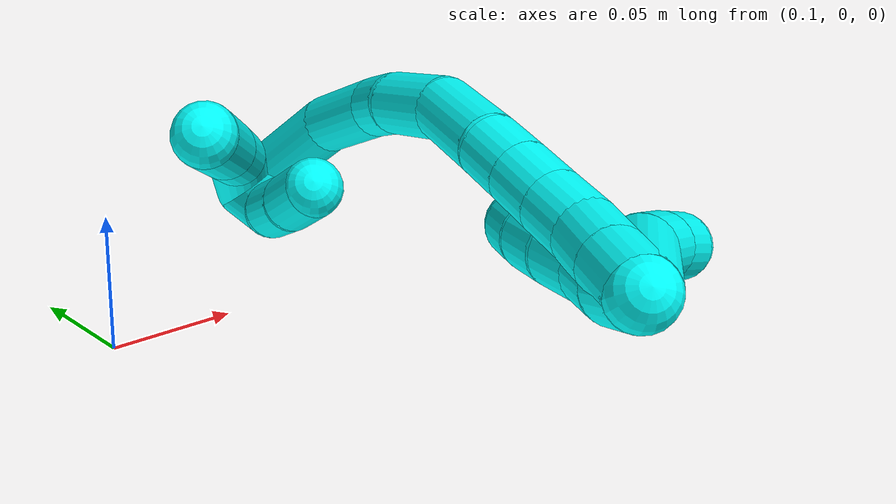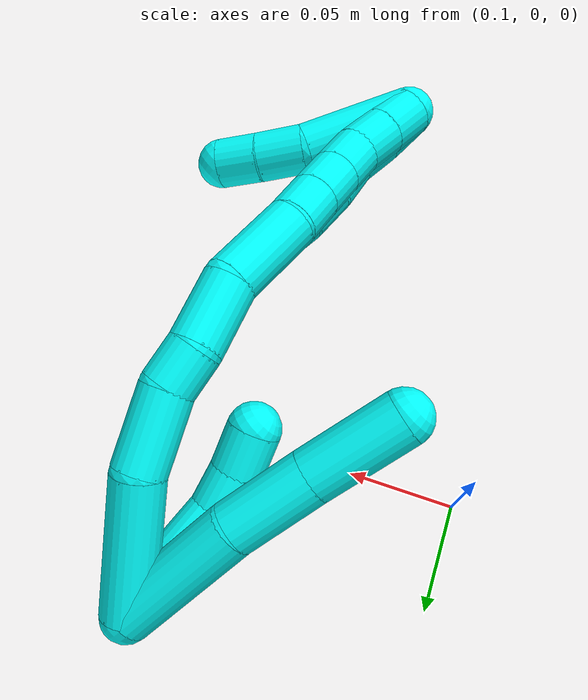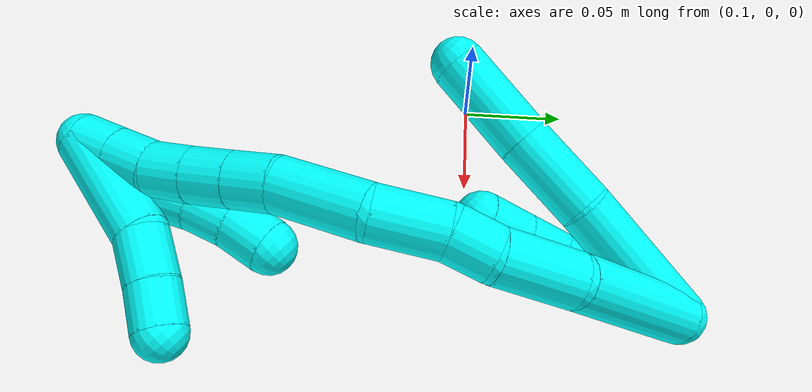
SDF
<sdf version="1.7">
 <world name="default">
  <model name="3">
   <static>0</static>
   <link name="3">
    <collision name="collision-cylinder-e_1_2_8">
     <pose>0.000406 -0.000252 0.032344 0.007801 0.012551 4.9e-05</pose>
     <geometry><cylinder><radius>0.0125</radius><length>0.064695</length></cylinder></geometry>
     <surface>
      <friction><ode><mu>1.16</mu><mu2>1.16</mu2><slip1>0</slip1><slip2>0</slip2></ode></friction>
      <contact><ode><kp>1e+06</kp><kd>1</kd><max_vel>0</max_vel><min_depth>0.001</min_depth></ode></contact>
     </surface>
    </collision>
    <visual name="visual-cylinder-e_1_2_8">
     <pose>0.000406 -0.000252 0.032344 0.007801 0.012551 4.9e-05</pose>
     <geometry><cylinder><radius>0.0125</radius><length>0.064695</length></cylinder></geometry>
     <material><ambient>0.003922 1 0.996078 1</ambient></material>
    </visual>
    <collision name="collision-cylinder-e_2_8_9">
     <pose>0.003702 0.001528 0.084291 -0.1033 0.145623 -0.007541</pose>
     <geometry><cylinder><radius>0.0125</radius><length>0.039839</length></cylinder></geometry>
     <surface>
      <friction><ode><mu>1.16</mu><mu2>1.16</mu2><slip1>0</slip1><slip2>0</slip2></ode></friction>
      <contact><ode><kp>1e+06</kp><kd>1</kd><max_vel>0</max_vel><min_depth>0.001</min_depth></ode></contact>
     </surface>
    </collision>
    <visual name="visual-cylinder-e_2_8_9">
     <pose>0.003702 0.001528 0.084291 -0.1033 0.145623 -0.007541</pose>
     <geometry><cylinder><radius>0.0125</radius><length>0.039839</length></cylinder></geometry>
     <material><ambient>0.003922 1 0.996078 1</ambient></material>
    </visual>
    <collision name="collision-cylinder-e_3_9_6">
     <pose>0.010347 0.005227 0.126254 -0.074425 0.165891 -0.00619</pose>
     <geometry><cylinder><radius>0.0125</radius><length>0.045466</length></cylinder></geometry>
     <surface>
      <friction><ode><mu>1.16</mu><mu2>1.16</mu2><slip1>0</slip1><slip2>0</slip2></ode></friction>
      <contact><ode><kp>1e+06</kp><kd>1</kd><max_vel>0</max_vel><min_depth>0.001</min_depth></ode></contact>
     </surface>
    </collision>
    <visual name="visual-cylinder-e_3_9_6">
     <pose>0.010347 0.005227 0.126254 -0.074425 0.165891 -0.00619</pose>
     <geometry><cylinder><radius>0.0125</radius><length>0.045466</length></cylinder></geometry>
     <material><ambient>0.003922 1 0.996078 1</ambient></material>
    </visual>
    <collision name="collision-cylinder-e_1_2_10">
     <pose>-0.001434 0.012376 0.026174 -0.441683 -0.049504 0.011116</pose>
     <geometry><cylinder><radius>0.0125</radius><length>0.057976</length></cylinder></geometry>
     <surface>
      <friction><ode><mu>1.16</mu><mu2>1.16</mu2><slip1>0</slip1><slip2>0</slip2></ode></friction>
      <contact><ode><kp>1e+06</kp><kd>1</kd><max_vel>0</max_vel><min_depth>0.001</min_depth></ode></contact>
     </surface>
    </collision>
    <visual name="visual-cylinder-e_1_2_10">
     <pose>-0.001434 0.012376 0.026174 -0.441683 -0.049504 0.011116</pose>
     <geometry><cylinder><radius>0.0125</radius><length>0.057976</length></cylinder></geometry>
     <material><ambient>0.003922 1 0.996078 1</ambient></material>
    </visual>
    <collision name="collision-cylinder-e_2_10_11">
     <pose>-0.006018 0.026959 0.061952 -0.225902 -0.309327 0.035367</pose>
     <geometry><cylinder><radius>0.0125</radius><length>0.020692</length></cylinder></geometry>
     <surface>
      <friction><ode><mu>1.16</mu><mu2>1.16</mu2><slip1>0</slip1><slip2>0</slip2></ode></friction>
      <contact><ode><kp>1e+06</kp><kd>1</kd><max_vel>0</max_vel><min_depth>0.001</min_depth></ode></contact>
     </surface>
    </collision>
    <visual name="visual-cylinder-e_2_10_11">
     <pose>-0.006018 0.026959 0.061952 -0.225902 -0.309327 0.035367</pose>
     <geometry><cylinder><radius>0.0125</radius><length>0.020692</length></cylinder></geometry>
     <material><ambient>0.003922 1 0.996078 1</ambient></material>
    </visual>
    <collision name="collision-cylinder-e_3_11_5">
     <pose>-0.013522 0.030582 0.08119 -0.145886 -0.420556 0.03119</pose>
     <geometry><cylinder><radius>0.0125</radius><length>0.021332</length></cylinder></geometry>
     <surface>
      <friction><ode><mu>1.16</mu><mu2>1.16</mu2><slip1>0</slip1><slip2>0</slip2></ode></friction>
      <contact><ode><kp>1e+06</kp><kd>1</kd><max_vel>0</max_vel><min_depth>0.001</min_depth></ode></contact>
     </surface>
    </collision>
    <visual name="visual-cylinder-e_3_11_5">
     <pose>-0.013522 0.030582 0.08119 -0.145886 -0.420556 0.03119</pose>
     <geometry><cylinder><radius>0.0125</radius><length>0.021332</length></cylinder></geometry>
     <material><ambient>0.003922 1 0.996078 1</ambient></material>
    </visual>
    <collision name="collision-cylinder-e_1_2_12">
     <pose>-0.021287 0.001318 0.025882 -0.050871 -0.687658 0.018218</pose>
     <geometry><cylinder><radius>0.0125</radius><length>0.067074</length></cylinder></geometry>
     <surface>
      <friction><ode><mu>1.16</mu><mu2>1.16</mu2><slip1>0</slip1><slip2>0</slip2></ode></friction>
      <contact><ode><kp>1e+06</kp><kd>1</kd><max_vel>0</max_vel><min_depth>0.001</min_depth></ode></contact>
     </surface>
    </collision>
    <visual name="visual-cylinder-e_1_2_12">
     <pose>-0.021287 0.001318 0.025882 -0.050871 -0.687658 0.018218</pose>
     <geometry><cylinder><radius>0.0125</radius><length>0.067074</length></cylinder></geometry>
     <material><ambient>0.003922 1 0.996078 1</ambient></material>
    </visual>
    <collision name="collision-cylinder-e_2_12_13">
     <pose>-0.050915 0.007894 0.067609 -0.320442 -0.463322 0.076208</pose>
     <geometry><cylinder><radius>0.0125</radius><length>0.037325</length></cylinder></geometry>
     <surface>
      <friction><ode><mu>1.16</mu><mu2>1.16</mu2><slip1>0</slip1><slip2>0</slip2></ode></friction>
      <contact><ode><kp>1e+06</kp><kd>1</kd><max_vel>0</max_vel><min_depth>0.001</min_depth></ode></contact>
     </surface>
    </collision>
    <visual name="visual-cylinder-e_2_12_13">
     <pose>-0.050915 0.007894 0.067609 -0.320442 -0.463322 0.076208</pose>
     <geometry><cylinder><radius>0.0125</radius><length>0.037325</length></cylinder></geometry>
     <material><ambient>0.003922 1 0.996078 1</ambient></material>
    </visual>
    <collision name="collision-cylinder-e_3_13_14">
     <pose>-0.061104 0.016442 0.092961 -0.333085 -0.181708 0.030627</pose>
     <geometry><cylinder><radius>0.0125</radius><length>0.020456</length></cylinder></geometry>
     <surface>
      <friction><ode><mu>1.16</mu><mu2>1.16</mu2><slip1>0</slip1><slip2>0</slip2></ode></friction>
      <contact><ode><kp>1e+06</kp><kd>1</kd><max_vel>0</max_vel><min_depth>0.001</min_depth></ode></contact>
     </surface>
    </collision>
    <visual name="visual-cylinder-e_3_13_14">
     <pose>-0.061104 0.016442 0.092961 -0.333085 -0.181708 0.030627</pose>
     <geometry><cylinder><radius>0.0125</radius><length>0.020456</length></cylinder></geometry>
     <material><ambient>0.003922 1 0.996078 1</ambient></material>
    </visual>
    <collision name="collision-cylinder-e_4_14_15">
     <pose>-0.067473 0.027905 0.115754 -0.551505 -0.282057 0.080301</pose>
     <geometry><cylinder><radius>0.0125</radius><length>0.032483</length></cylinder></geometry>
     <surface>
      <friction><ode><mu>1.16</mu><mu2>1.16</mu2><slip1>0</slip1><slip2>0</slip2></ode></friction>
      <contact><ode><kp>1e+06</kp><kd>1</kd><max_vel>0</max_vel><min_depth>0.001</min_depth></ode></contact>
     </surface>
    </collision>
    <visual name="visual-cylinder-e_4_14_15">
     <pose>-0.067473 0.027905 0.115754 -0.551505 -0.282057 0.080301</pose>
     <geometry><cylinder><radius>0.0125</radius><length>0.032483</length></cylinder></geometry>
     <material><ambient>0.003922 1 0.996078 1</ambient></material>
    </visual>
    <collision name="collision-cylinder-e_5_15_16">
     <pose>-0.071437 0.049094 0.145352 -0.673503 0.026659 -0.009334</pose>
     <geometry><cylinder><radius>0.0125</radius><length>0.04175</length></cylinder></geometry>
     <surface>
      <friction><ode><mu>1.16</mu><mu2>1.16</mu2><slip1>0</slip1><slip2>0</slip2></ode></friction>
      <contact><ode><kp>1e+06</kp><kd>1</kd><max_vel>0</max_vel><min_depth>0.001</min_depth></ode></contact>
     </surface>
    </collision>
    <visual name="visual-cylinder-e_5_15_16">
     <pose>-0.071437 0.049094 0.145352 -0.673503 0.026659 -0.009334</pose>
     <geometry><cylinder><radius>0.0125</radius><length>0.04175</length></cylinder></geometry>
     <material><ambient>0.003922 1 0.996078 1</ambient></material>
    </visual>
    <collision name="collision-cylinder-e_6_16_17">
     <pose>-0.071164 0.069712 0.168448 -0.842064 -0.027862 0.012478</pose>
     <geometry><cylinder><radius>0.0125</radius><length>0.020388</length></cylinder></geometry>
     <surface>
      <friction><ode><mu>1.16</mu><mu2>1.16</mu2><slip1>0</slip1><slip2>0</slip2></ode></friction>
      <contact><ode><kp>1e+06</kp><kd>1</kd><max_vel>0</max_vel><min_depth>0.001</min_depth></ode></contact>
     </surface>
    </collision>
    <visual name="visual-cylinder-e_6_16_17">
     <pose>-0.071164 0.069712 0.168448 -0.842064 -0.027862 0.012478</pose>
     <geometry><cylinder><radius>0.0125</radius><length>0.020388</length></cylinder></geometry>
     <material><ambient>0.003922 1 0.996078 1</ambient></material>
    </visual>
    <collision name="collision-cylinder-e_7_17_18">
     <pose>-0.071626 0.084889 0.181971 -0.843878 -0.017581 0.007892</pose>
     <geometry><cylinder><radius>0.0125</radius><length>0.020278</length></cylinder></geometry>
     <surface>
      <friction><ode><mu>1.16</mu><mu2>1.16</mu2><slip1>0</slip1><slip2>0</slip2></ode></friction>
      <contact><ode><kp>1e+06</kp><kd>1</kd><max_vel>0</max_vel><min_depth>0.001</min_depth></ode></contact>
     </surface>
    </collision>
    <visual name="visual-cylinder-e_7_17_18">
     <pose>-0.071626 0.084889 0.181971 -0.843878 -0.017581 0.007892</pose>
     <geometry><cylinder><radius>0.0125</radius><length>0.020278</length></cylinder></geometry>
     <material><ambient>0.003922 1 0.996078 1</ambient></material>
    </visual>
    <collision name="collision-cylinder-e_8_18_19">
     <pose>-0.071952 0.099757 0.195582 -0.815026 -0.014677 0.006336</pose>
     <geometry><cylinder><radius>0.0125</radius><length>0.020048</length></cylinder></geometry>
     <surface>
      <friction><ode><mu>1.16</mu><mu2>1.16</mu2><slip1>0</slip1><slip2>0</slip2></ode></friction>
      <contact><ode><kp>1e+06</kp><kd>1</kd><max_vel>0</max_vel><min_depth>0.001</min_depth></ode></contact>
     </surface>
    </collision>
    <visual name="visual-cylinder-e_8_18_19">
     <pose>-0.071952 0.099757 0.195582 -0.815026 -0.014677 0.006336</pose>
     <geometry><cylinder><radius>0.0125</radius><length>0.020048</length></cylinder></geometry>
     <material><ambient>0.003922 1 0.996078 1</ambient></material>
    </visual>
    <collision name="collision-cylinder-e_9_19_20">
     <pose>-0.070852 0.113134 0.210345 -0.656831 0.124562 -0.042494</pose>
     <geometry><cylinder><radius>0.0125</radius><length>0.020077</length></cylinder></geometry>
     <surface>
      <friction><ode><mu>1.16</mu><mu2>1.16</mu2><slip1>0</slip1><slip2>0</slip2></ode></friction>
      <contact><ode><kp>1e+06</kp><kd>1</kd><max_vel>0</max_vel><min_depth>0.001</min_depth></ode></contact>
     </surface>
    </collision>
    <visual name="visual-cylinder-e_9_19_20">
     <pose>-0.070852 0.113134 0.210345 -0.656831 0.124562 -0.042494</pose>
     <geometry><cylinder><radius>0.0125</radius><length>0.020077</length></cylinder></geometry>
     <material><ambient>0.003922 1 0.996078 1</ambient></material>
    </visual>
    <collision name="collision-cylinder-e_10_20_1">
     <pose>-0.068435 0.125227 0.226216 -0.645392 0.116468 -0.038984</pose>
     <geometry><cylinder><radius>0.0125</radius><length>0.020121</length></cylinder></geometry>
     <surface>
      <friction><ode><mu>1.16</mu><mu2>1.16</mu2><slip1>0</slip1><slip2>0</slip2></ode></friction>
      <contact><ode><kp>1e+06</kp><kd>1</kd><max_vel>0</max_vel><min_depth>0.001</min_depth></ode></contact>
     </surface>
    </collision>
    <visual name="visual-cylinder-e_10_20_1">
     <pose>-0.068435 0.125227 0.226216 -0.645392 0.116468 -0.038984</pose>
     <geometry><cylinder><radius>0.0125</radius><length>0.020121</length></cylinder></geometry>
     <material><ambient>0.003922 1 0.996078 1</ambient></material>
    </visual>
    <collision name="collision-cylinder-e_1_1_21">
     <pose>-0.067425 0.128914 0.224473 2.90715 -0.015855 -0.134432</pose>
     <geometry><cylinder><radius>0.0125</radius><length>0.02</length></cylinder></geometry>
     <surface>
      <friction><ode><mu>1.16</mu><mu2>1.16</mu2><slip1>0</slip1><slip2>0</slip2></ode></friction>
      <contact><ode><kp>1e+06</kp><kd>1</kd><max_vel>0</max_vel><min_depth>0.001</min_depth></ode></contact>
     </surface>
    </collision>
    <visual name="visual-cylinder-e_1_1_21">
     <pose>-0.067425 0.128914 0.224473 2.90715 -0.015855 -0.134432</pose>
     <geometry><cylinder><radius>0.0125</radius><length>0.02</length></cylinder></geometry>
     <material><ambient>0.003922 1 0.996078 1</ambient></material>
    </visual>
    <collision name="collision-cylinder-e_2_21_22">
     <pose>-0.068721 0.122379 0.20575 2.70368 -0.114016 -0.502105</pose>
     <geometry><cylinder><radius>0.0125</radius><length>0.02</length></cylinder></geometry>
     <surface>
      <friction><ode><mu>1.16</mu><mu2>1.16</mu2><slip1>0</slip1><slip2>0</slip2></ode></friction>
      <contact><ode><kp>1e+06</kp><kd>1</kd><max_vel>0</max_vel><min_depth>0.001</min_depth></ode></contact>
     </surface>
    </collision>
    <visual name="visual-cylinder-e_2_21_22">
     <pose>-0.068721 0.122379 0.20575 2.70368 -0.114016 -0.502105</pose>
     <geometry><cylinder><radius>0.0125</radius><length>0.02</length></cylinder></geometry>
     <material><ambient>0.003922 1 0.996078 1</ambient></material>
    </visual>
    <collision name="collision-cylinder-e_3_22_23">
     <pose>-0.068682 0.112603 0.188527 2.54699 0.117984 0.380862</pose>
     <geometry><cylinder><radius>0.0125</radius><length>0.02</length></cylinder></geometry>
     <surface>
      <friction><ode><mu>1.16</mu><mu2>1.16</mu2><slip1>0</slip1><slip2>0</slip2></ode></friction>
      <contact><ode><kp>1e+06</kp><kd>1</kd><max_vel>0</max_vel><min_depth>0.001</min_depth></ode></contact>
     </surface>
    </collision>
    <visual name="visual-cylinder-e_3_22_23">
     <pose>-0.068682 0.112603 0.188527 2.54699 0.117984 0.380862</pose>
     <geometry><cylinder><radius>0.0125</radius><length>0.02</length></cylinder></geometry>
     <material><ambient>0.003922 1 0.996078 1</ambient></material>
    </visual>
    <collision name="collision-cylinder-e_4_23_24">
     <pose>-0.067375 0.102284 0.171505 2.64591 0.012914 0.051026</pose>
     <geometry><cylinder><radius>0.0125</radius><length>0.02</length></cylinder></geometry>
     <surface>
      <friction><ode><mu>1.16</mu><mu2>1.16</mu2><slip1>0</slip1><slip2>0</slip2></ode></friction>
      <contact><ode><kp>1e+06</kp><kd>1</kd><max_vel>0</max_vel><min_depth>0.001</min_depth></ode></contact>
     </surface>
    </collision>
    <visual name="visual-cylinder-e_4_23_24">
     <pose>-0.067375 0.102284 0.171505 2.64591 0.012914 0.051026</pose>
     <geometry><cylinder><radius>0.0125</radius><length>0.02</length></cylinder></geometry>
     <material><ambient>0.003922 1 0.996078 1</ambient></material>
    </visual>
    <collision name="collision-cylinder-e_5_24_4">
     <pose>-0.068408 0.093628 0.153574 2.73808 -0.116466 -0.555323</pose>
     <geometry><cylinder><radius>0.0125</radius><length>0.02</length></cylinder></geometry>
     <surface>
      <friction><ode><mu>1.16</mu><mu2>1.16</mu2><slip1>0</slip1><slip2>0</slip2></ode></friction>
      <contact><ode><kp>1e+06</kp><kd>1</kd><max_vel>0</max_vel><min_depth>0.001</min_depth></ode></contact>
     </surface>
    </collision>
    <visual name="visual-cylinder-e_5_24_4">
     <pose>-0.068408 0.093628 0.153574 2.73808 -0.116466 -0.555323</pose>
     <geometry><cylinder><radius>0.0125</radius><length>0.02</length></cylinder></geometry>
     <material><ambient>0.003922 1 0.996078 1</ambient></material>
    </visual>
    <collision name="collision-cylinder-e_1_1_25">
     <pose>-0.078912 0.125652 0.209484 2.91933 -0.430833 -2.1984</pose>
     <geometry><cylinder><radius>0.0125</radius><length>0.055772</length></cylinder></geometry>
     <surface>
      <friction><ode><mu>1.16</mu><mu2>1.16</mu2><slip1>0</slip1><slip2>0</slip2></ode></friction>
      <contact><ode><kp>1e+06</kp><kd>1</kd><max_vel>0</max_vel><min_depth>0.001</min_depth></ode></contact>
     </surface>
    </collision>
    <visual name="visual-cylinder-e_1_1_25">
     <pose>-0.078912 0.125652 0.209484 2.91933 -0.430833 -2.1984</pose>
     <geometry><cylinder><radius>0.0125</radius><length>0.055772</length></cylinder></geometry>
     <material><ambient>0.003922 1 0.996078 1</ambient></material>
    </visual>
    <collision name="collision-cylinder-e_2_25_26">
     <pose>-0.097033 0.12093 0.174934 -3.05403 -0.580434 2.85028</pose>
     <geometry><cylinder><radius>0.0125</radius><length>0.023615</length></cylinder></geometry>
     <surface>
      <friction><ode><mu>1.16</mu><mu2>1.16</mu2><slip1>0</slip1><slip2>0</slip2></ode></friction>
      <contact><ode><kp>1e+06</kp><kd>1</kd><max_vel>0</max_vel><min_depth>0.001</min_depth></ode></contact>
     </surface>
    </collision>
    <visual name="visual-cylinder-e_2_25_26">
     <pose>-0.097033 0.12093 0.174934 -3.05403 -0.580434 2.85028</pose>
     <geometry><cylinder><radius>0.0125</radius><length>0.023615</length></cylinder></geometry>
     <material><ambient>0.003922 1 0.996078 1</ambient></material>
    </visual>
    <collision name="collision-cylinder-e_3_26_3">
     <pose>-0.109338 0.123291 0.156731 -2.96453 -0.601221 2.58386</pose>
     <geometry><cylinder><radius>0.0125</radius><length>0.020614</length></cylinder></geometry>
     <surface>
      <friction><ode><mu>1.16</mu><mu2>1.16</mu2><slip1>0</slip1><slip2>0</slip2></ode></friction>
      <contact><ode><kp>1e+06</kp><kd>1</kd><max_vel>0</max_vel><min_depth>0.001</min_depth></ode></contact>
     </surface>
    </collision>
    <visual name="visual-cylinder-e_3_26_3">
     <pose>-0.109338 0.123291 0.156731 -2.96453 -0.601221 2.58386</pose>
     <geometry><cylinder><radius>0.0125</radius><length>0.020614</length></cylinder></geometry>
     <material><ambient>0.003922 1 0.996078 1</ambient></material>
    </visual>
    <collision name="collision-sphere-3">
     <pose>-0.115168 0.124788 0.148365 0 -0 0</pose>
     <geometry><sphere><radius>0.0125</radius></sphere></geometry>
     <surface>
      <friction><ode><mu>1.16</mu><mu2>1.16</mu2><slip1>0</slip1><slip2>0</slip2></ode></friction>
      <contact><ode><kp>1e+06</kp><kd>1</kd><max_vel>0</max_vel><min_depth>0.001</min_depth></ode></contact>
     </surface>
    </collision>
    <visual name="visual-sphere-3">
     <pose>-0.115168 0.124788 0.148365 0 -0 0</pose>
     <geometry><sphere><radius>0.0125</radius></sphere></geometry>
     <material><ambient>0.003922 1 0.996078 1</ambient></material>
    </visual>
    <collision name="collision-sphere-26">
     <pose>-0.103508 0.121794 0.165098 0 -0 0</pose>
     <geometry><sphere><radius>0.0125</radius></sphere></geometry>
     <surface>
      <friction><ode><mu>1.16</mu><mu2>1.16</mu2><slip1>0</slip1><slip2>0</slip2></ode></friction>
      <contact><ode><kp>1e+06</kp><kd>1</kd><max_vel>0</max_vel><min_depth>0.001</min_depth></ode></contact>
     </surface>
    </collision>
    <visual name="visual-sphere-26">
     <pose>-0.103508 0.121794 0.165098 0 -0 0</pose>
     <geometry><sphere><radius>0.0125</radius></sphere></geometry>
     <material><ambient>0.003922 1 0.996078 1</ambient></material>
    </visual>
    <collision name="collision-sphere-25">
     <pose>-0.090558 0.120067 0.18477 0 -0 0</pose>
     <geometry><sphere><radius>0.0125</radius></sphere></geometry>
     <surface>
      <friction><ode><mu>1.16</mu><mu2>1.16</mu2><slip1>0</slip1><slip2>0</slip2></ode></friction>
      <contact><ode><kp>1e+06</kp><kd>1</kd><max_vel>0</max_vel><min_depth>0.001</min_depth></ode></contact>
     </surface>
    </collision>
    <visual name="visual-sphere-25">
     <pose>-0.090558 0.120067 0.18477 0 -0 0</pose>
     <geometry><sphere><radius>0.0125</radius></sphere></geometry>
     <material><ambient>0.003922 1 0.996078 1</ambient></material>
    </visual>
    <collision name="collision-sphere-4">
     <pose>-0.06957 0.089728 0.14444 0 -0 0</pose>
     <geometry><sphere><radius>0.0125</radius></sphere></geometry>
     <surface>
      <friction><ode><mu>1.16</mu><mu2>1.16</mu2><slip1>0</slip1><slip2>0</slip2></ode></friction>
      <contact><ode><kp>1e+06</kp><kd>1</kd><max_vel>0</max_vel><min_depth>0.001</min_depth></ode></contact>
     </surface>
    </collision>
    <visual name="visual-sphere-4">
     <pose>-0.06957 0.089728 0.14444 0 -0 0</pose>
     <geometry><sphere><radius>0.0125</radius></sphere></geometry>
     <material><ambient>0.003922 1 0.996078 1</ambient></material>
    </visual>
    <collision name="collision-sphere-24">
     <pose>-0.067246 0.097528 0.162709 0 -0 0</pose>
     <geometry><sphere><radius>0.0125</radius></sphere></geometry>
     <surface>
      <friction><ode><mu>1.16</mu><mu2>1.16</mu2><slip1>0</slip1><slip2>0</slip2></ode></friction>
      <contact><ode><kp>1e+06</kp><kd>1</kd><max_vel>0</max_vel><min_depth>0.001</min_depth></ode></contact>
     </surface>
    </collision>
    <visual name="visual-sphere-24">
     <pose>-0.067246 0.097528 0.162709 0 -0 0</pose>
     <geometry><sphere><radius>0.0125</radius></sphere></geometry>
     <material><ambient>0.003922 1 0.996078 1</ambient></material>
    </visual>
    <collision name="collision-sphere-23">
     <pose>-0.067504 0.10704 0.1803 0 -0 0</pose>
     <geometry><sphere><radius>0.0125</radius></sphere></geometry>
     <surface>
      <friction><ode><mu>1.16</mu><mu2>1.16</mu2><slip1>0</slip1><slip2>0</slip2></ode></friction>
      <contact><ode><kp>1e+06</kp><kd>1</kd><max_vel>0</max_vel><min_depth>0.001</min_depth></ode></contact>
     </surface>
    </collision>
    <visual name="visual-sphere-23">
     <pose>-0.067504 0.10704 0.1803 0 -0 0</pose>
     <geometry><sphere><radius>0.0125</radius></sphere></geometry>
     <material><ambient>0.003922 1 0.996078 1</ambient></material>
    </visual>
    <collision name="collision-sphere-22">
     <pose>-0.069859 0.118166 0.196753 0 -0 0</pose>
     <geometry><sphere><radius>0.0125</radius></sphere></geometry>
     <surface>
      <friction><ode><mu>1.16</mu><mu2>1.16</mu2><slip1>0</slip1><slip2>0</slip2></ode></friction>
      <contact><ode><kp>1e+06</kp><kd>1</kd><max_vel>0</max_vel><min_depth>0.001</min_depth></ode></contact>
     </surface>
    </collision>
    <visual name="visual-sphere-22">
     <pose>-0.069859 0.118166 0.196753 0 -0 0</pose>
     <geometry><sphere><radius>0.0125</radius></sphere></geometry>
     <material><ambient>0.003922 1 0.996078 1</ambient></material>
    </visual>
    <collision name="collision-sphere-21">
     <pose>-0.067583 0.126592 0.214748 0 -0 0</pose>
     <geometry><sphere><radius>0.0125</radius></sphere></geometry>
     <surface>
      <friction><ode><mu>1.16</mu><mu2>1.16</mu2><slip1>0</slip1><slip2>0</slip2></ode></friction>
      <contact><ode><kp>1e+06</kp><kd>1</kd><max_vel>0</max_vel><min_depth>0.001</min_depth></ode></contact>
     </surface>
    </collision>
    <visual name="visual-sphere-21">
     <pose>-0.067583 0.126592 0.214748 0 -0 0</pose>
     <geometry><sphere><radius>0.0125</radius></sphere></geometry>
     <material><ambient>0.003922 1 0.996078 1</ambient></material>
    </visual>
    <collision name="collision-sphere-1">
     <pose>-0.067266 0.131237 0.234198 0 -0 0</pose>
     <geometry><sphere><radius>0.0125</radius></sphere></geometry>
     <surface>
      <friction><ode><mu>1.16</mu><mu2>1.16</mu2><slip1>0</slip1><slip2>0</slip2></ode></friction>
      <contact><ode><kp>1e+06</kp><kd>1</kd><max_vel>0</max_vel><min_depth>0.001</min_depth></ode></contact>
     </surface>
    </collision>
    <visual name="visual-sphere-1">
     <pose>-0.067266 0.131237 0.234198 0 -0 0</pose>
     <geometry><sphere><radius>0.0125</radius></sphere></geometry>
     <material><ambient>0.003922 1 0.996078 1</ambient></material>
    </visual>
    <collision name="collision-sphere-11">
     <pose>-0.009168 0.029167 0.071557 0 -0 0</pose>
     <geometry><sphere><radius>0.0125</radius></sphere></geometry>
     <surface>
      <friction><ode><mu>1.16</mu><mu2>1.16</mu2><slip1>0</slip1><slip2>0</slip2></ode></friction>
      <contact><ode><kp>1e+06</kp><kd>1</kd><max_vel>0</max_vel><min_depth>0.001</min_depth></ode></contact>
     </surface>
    </collision>
    <visual name="visual-sphere-11">
     <pose>-0.009168 0.029167 0.071557 0 -0 0</pose>
     <geometry><sphere><radius>0.0125</radius></sphere></geometry>
     <material><ambient>0.003922 1 0.996078 1</ambient></material>
    </visual>
    <collision name="collision-sphere-10">
     <pose>-0.002869 0.024752 0.052348 0 -0 0</pose>
     <geometry><sphere><radius>0.0125</radius></sphere></geometry>
     <surface>
      <friction><ode><mu>1.16</mu><mu2>1.16</mu2><slip1>0</slip1><slip2>0</slip2></ode></friction>
      <contact><ode><kp>1e+06</kp><kd>1</kd><max_vel>0</max_vel><min_depth>0.001</min_depth></ode></contact>
     </surface>
    </collision>
    <visual name="visual-sphere-10">
     <pose>-0.002869 0.024752 0.052348 0 -0 0</pose>
     <geometry><sphere><radius>0.0125</radius></sphere></geometry>
     <material><ambient>0.003922 1 0.996078 1</ambient></material>
    </visual>
    <collision name="collision-sphere-6">
     <pose>0.014101 0.006894 0.148613 0 -0 0</pose>
     <geometry><sphere><radius>0.0125</radius></sphere></geometry>
     <surface>
      <friction><ode><mu>1.16</mu><mu2>1.16</mu2><slip1>0</slip1><slip2>0</slip2></ode></friction>
      <contact><ode><kp>1e+06</kp><kd>1</kd><max_vel>0</max_vel><min_depth>0.001</min_depth></ode></contact>
     </surface>
    </collision>
    <visual name="visual-sphere-6">
     <pose>0.014101 0.006894 0.148613 0 -0 0</pose>
     <geometry><sphere><radius>0.0125</radius></sphere></geometry>
     <material><ambient>0.003922 1 0.996078 1</ambient></material>
    </visual>
    <collision name="collision-sphere-9">
     <pose>0.006593 0.00356 0.103895 0 -0 0</pose>
     <geometry><sphere><radius>0.0125</radius></sphere></geometry>
     <surface>
      <friction><ode><mu>1.16</mu><mu2>1.16</mu2><slip1>0</slip1><slip2>0</slip2></ode></friction>
      <contact><ode><kp>1e+06</kp><kd>1</kd><max_vel>0</max_vel><min_depth>0.001</min_depth></ode></contact>
     </surface>
    </collision>
    <visual name="visual-sphere-9">
     <pose>0.006593 0.00356 0.103895 0 -0 0</pose>
     <geometry><sphere><radius>0.0125</radius></sphere></geometry>
     <material><ambient>0.003922 1 0.996078 1</ambient></material>
    </visual>
    <collision name="collision-sphere-2">
     <geometry><sphere><radius>0.0125</radius></sphere></geometry>
     <surface>
      <friction><ode><mu>1.16</mu><mu2>1.16</mu2><slip1>0</slip1><slip2>0</slip2></ode></friction>
      <contact><ode><kp>1e+06</kp><kd>1</kd><max_vel>0</max_vel><min_depth>0.001</min_depth></ode></contact>
     </surface>
    </collision>
    <visual name="visual-sphere-2">
     <geometry><sphere><radius>0.0125</radius></sphere></geometry>
     <material><ambient>0.003922 1 0.996078 1</ambient></material>
    </visual>
    <collision name="collision-sphere-19">
     <pose>-0.072099 0.107052 0.202457 0 -0 0</pose>
     <geometry><sphere><radius>0.0125</radius></sphere></geometry>
     <surface>
      <friction><ode><mu>1.16</mu><mu2>1.16</mu2><slip1>0</slip1><slip2>0</slip2></ode></friction>
      <contact><ode><kp>1e+06</kp><kd>1</kd><max_vel>0</max_vel><min_depth>0.001</min_depth></ode></contact>
     </surface>
    </collision>
    <visual name="visual-sphere-19">
     <pose>-0.072099 0.107052 0.202457 0 -0 0</pose>
     <geometry><sphere><radius>0.0125</radius></sphere></geometry>
     <material><ambient>0.003922 1 0.996078 1</ambient></material>
    </visual>
    <collision name="collision-sphere-8">
     <pose>0.000812 -0.000505 0.064687 0 -0 0</pose>
     <geometry><sphere><radius>0.0125</radius></sphere></geometry>
     <surface>
      <friction><ode><mu>1.16</mu><mu2>1.16</mu2><slip1>0</slip1><slip2>0</slip2></ode></friction>
      <contact><ode><kp>1e+06</kp><kd>1</kd><max_vel>0</max_vel><min_depth>0.001</min_depth></ode></contact>
     </surface>
    </collision>
    <visual name="visual-sphere-8">
     <pose>0.000812 -0.000505 0.064687 0 -0 0</pose>
     <geometry><sphere><radius>0.0125</radius></sphere></geometry>
     <material><ambient>0.003922 1 0.996078 1</ambient></material>
    </visual>
    <collision name="collision-sphere-5">
     <pose>-0.017877 0.031998 0.090824 0 -0 0</pose>
     <geometry><sphere><radius>0.0125</radius></sphere></geometry>
     <surface>
      <friction><ode><mu>1.16</mu><mu2>1.16</mu2><slip1>0</slip1><slip2>0</slip2></ode></friction>
      <contact><ode><kp>1e+06</kp><kd>1</kd><max_vel>0</max_vel><min_depth>0.001</min_depth></ode></contact>
     </surface>
    </collision>
    <visual name="visual-sphere-5">
     <pose>-0.017877 0.031998 0.090824 0 -0 0</pose>
     <geometry><sphere><radius>0.0125</radius></sphere></geometry>
     <material><ambient>0.003922 1 0.996078 1</ambient></material>
    </visual>
    <collision name="collision-sphere-12">
     <pose>-0.042574 0.002636 0.051764 0 -0 0</pose>
     <geometry><sphere><radius>0.0125</radius></sphere></geometry>
     <surface>
      <friction><ode><mu>1.16</mu><mu2>1.16</mu2><slip1>0</slip1><slip2>0</slip2></ode></friction>
      <contact><ode><kp>1e+06</kp><kd>1</kd><max_vel>0</max_vel><min_depth>0.001</min_depth></ode></contact>
     </surface>
    </collision>
    <visual name="visual-sphere-12">
     <pose>-0.042574 0.002636 0.051764 0 -0 0</pose>
     <geometry><sphere><radius>0.0125</radius></sphere></geometry>
     <material><ambient>0.003922 1 0.996078 1</ambient></material>
    </visual>
    <collision name="collision-sphere-13">
     <pose>-0.059255 0.013153 0.083454 0 -0 0</pose>
     <geometry><sphere><radius>0.0125</radius></sphere></geometry>
     <surface>
      <friction><ode><mu>1.16</mu><mu2>1.16</mu2><slip1>0</slip1><slip2>0</slip2></ode></friction>
      <contact><ode><kp>1e+06</kp><kd>1</kd><max_vel>0</max_vel><min_depth>0.001</min_depth></ode></contact>
     </surface>
    </collision>
    <visual name="visual-sphere-13">
     <pose>-0.059255 0.013153 0.083454 0 -0 0</pose>
     <geometry><sphere><radius>0.0125</radius></sphere></geometry>
     <material><ambient>0.003922 1 0.996078 1</ambient></material>
    </visual>
    <collision name="collision-sphere-14">
     <pose>-0.062952 0.019731 0.102467 0 -0 0</pose>
     <geometry><sphere><radius>0.0125</radius></sphere></geometry>
     <surface>
      <friction><ode><mu>1.16</mu><mu2>1.16</mu2><slip1>0</slip1><slip2>0</slip2></ode></friction>
      <contact><ode><kp>1e+06</kp><kd>1</kd><max_vel>0</max_vel><min_depth>0.001</min_depth></ode></contact>
     </surface>
    </collision>
    <visual name="visual-sphere-14">
     <pose>-0.062952 0.019731 0.102467 0 -0 0</pose>
     <geometry><sphere><radius>0.0125</radius></sphere></geometry>
     <material><ambient>0.003922 1 0.996078 1</ambient></material>
    </visual>
    <collision name="collision-sphere-15">
     <pose>-0.071993 0.036078 0.129041 0 -0 0</pose>
     <geometry><sphere><radius>0.0125</radius></sphere></geometry>
     <surface>
      <friction><ode><mu>1.16</mu><mu2>1.16</mu2><slip1>0</slip1><slip2>0</slip2></ode></friction>
      <contact><ode><kp>1e+06</kp><kd>1</kd><max_vel>0</max_vel><min_depth>0.001</min_depth></ode></contact>
     </surface>
    </collision>
    <visual name="visual-sphere-15">
     <pose>-0.071993 0.036078 0.129041 0 -0 0</pose>
     <geometry><sphere><radius>0.0125</radius></sphere></geometry>
     <material><ambient>0.003922 1 0.996078 1</ambient></material>
    </visual>
    <collision name="collision-sphere-16">
     <pose>-0.07088 0.06211 0.161663 0 -0 0</pose>
     <geometry><sphere><radius>0.0125</radius></sphere></geometry>
     <surface>
      <friction><ode><mu>1.16</mu><mu2>1.16</mu2><slip1>0</slip1><slip2>0</slip2></ode></friction>
      <contact><ode><kp>1e+06</kp><kd>1</kd><max_vel>0</max_vel><min_depth>0.001</min_depth></ode></contact>
     </surface>
    </collision>
    <visual name="visual-sphere-16">
     <pose>-0.07088 0.06211 0.161663 0 -0 0</pose>
     <geometry><sphere><radius>0.0125</radius></sphere></geometry>
     <material><ambient>0.003922 1 0.996078 1</ambient></material>
    </visual>
    <collision name="collision-sphere-17">
     <pose>-0.071448 0.077314 0.175234 0 -0 0</pose>
     <geometry><sphere><radius>0.0125</radius></sphere></geometry>
     <surface>
      <friction><ode><mu>1.16</mu><mu2>1.16</mu2><slip1>0</slip1><slip2>0</slip2></ode></friction>
      <contact><ode><kp>1e+06</kp><kd>1</kd><max_vel>0</max_vel><min_depth>0.001</min_depth></ode></contact>
     </surface>
    </collision>
    <visual name="visual-sphere-17">
     <pose>-0.071448 0.077314 0.175234 0 -0 0</pose>
     <geometry><sphere><radius>0.0125</radius></sphere></geometry>
     <material><ambient>0.003922 1 0.996078 1</ambient></material>
    </visual>
    <collision name="collision-sphere-18">
     <pose>-0.071805 0.092463 0.188708 0 -0 0</pose>
     <geometry><sphere><radius>0.0125</radius></sphere></geometry>
     <surface>
      <friction><ode><mu>1.16</mu><mu2>1.16</mu2><slip1>0</slip1><slip2>0</slip2></ode></friction>
      <contact><ode><kp>1e+06</kp><kd>1</kd><max_vel>0</max_vel><min_depth>0.001</min_depth></ode></contact>
     </surface>
    </collision>
    <visual name="visual-sphere-18">
     <pose>-0.071805 0.092463 0.188708 0 -0 0</pose>
     <geometry><sphere><radius>0.0125</radius></sphere></geometry>
     <material><ambient>0.003922 1 0.996078 1</ambient></material>
    </visual>
    <collision name="collision-sphere-20">
     <pose>-0.069604 0.119216 0.218233 0 -0 0</pose>
     <geometry><sphere><radius>0.0125</radius></sphere></geometry>
     <surface>
      <friction><ode><mu>1.16</mu><mu2>1.16</mu2><slip1>0</slip1><slip2>0</slip2></ode></friction>
      <contact><ode><kp>1e+06</kp><kd>1</kd><max_vel>0</max_vel><min_depth>0.001</min_depth></ode></contact>
     </surface>
    </collision>
    <visual name="visual-sphere-20">
     <pose>-0.069604 0.119216 0.218233 0 -0 0</pose>
     <geometry><sphere><radius>0.0125</radius></sphere></geometry>
     <material><ambient>0.003922 1 0.996078 1</ambient></material>
    </visual>
    <inertial>
     <pose>-0.043344 0.05256 0.119271 0 -0 0</pose>
     <mass>0.75</mass>
     <inertia><ixx>8.5e-05</ixx><ixy>0</ixy><ixz>0</ixz><iyy>0.000118</iyy><iyz>0</iyz><izz>3.4e-05</izz></inertia>
    </inertial>
   </link>
   <pose>0.224048 0.095487 0.012279 -0.995166 0.414265 2.7677</pose>
  </model>
 </world>
</sdf>
